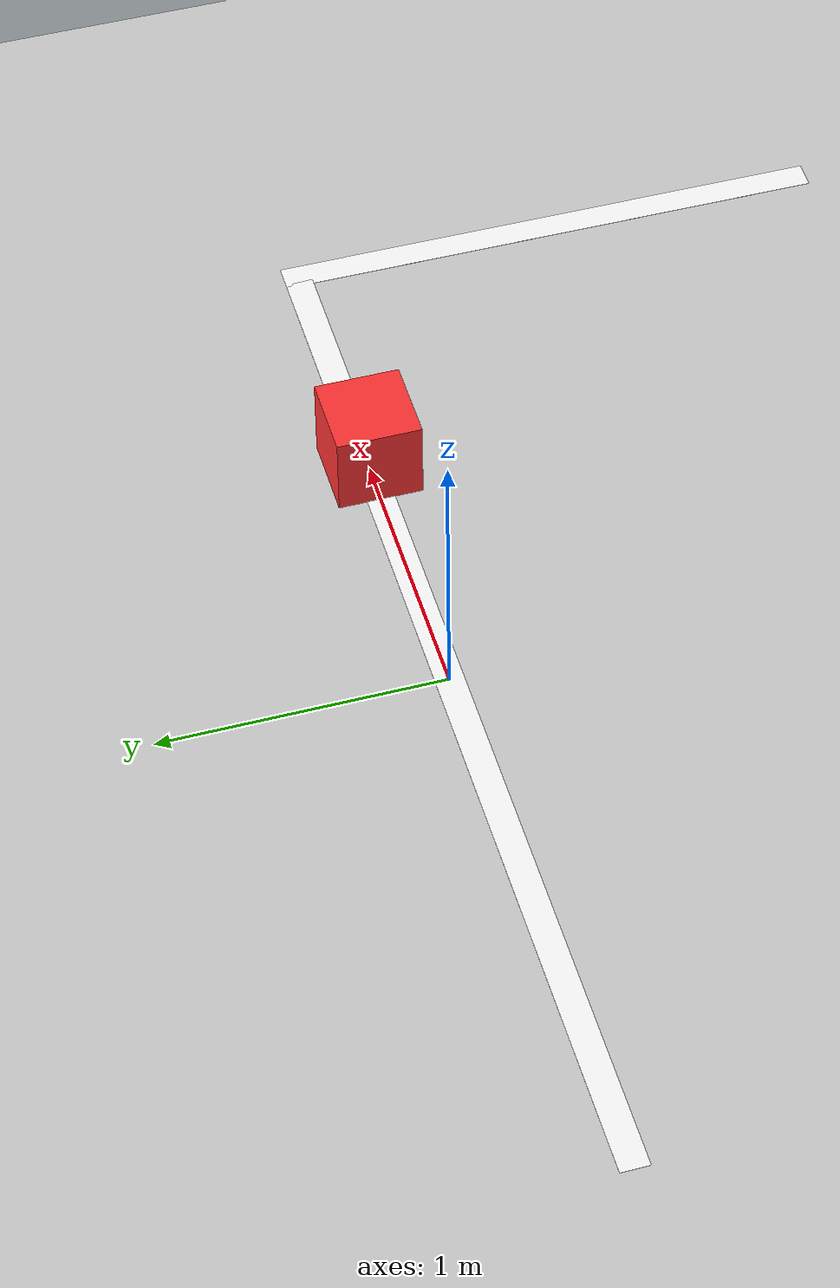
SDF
<?xml version="1.0"?>
<sdf version="1.6">
  <world name="line_world">

    <!-- Physics & lighting -->
    <include><uri>model://sun</uri></include>
    <include><uri>model://ground_plane</uri></include>

    <physics name="default" type="ode">
      <max_step_size>0.001</max_step_size>
      <real_time_factor>1</real_time_factor>
    </physics>

    <!-- ── White line (a flat thin box) ── -->
    <model name="line_straight">
      <static>true</static>
      <pose>0 0 0.001 0 0 0</pose>
      <link name="link">
        <visual name="visual">
          <geometry>
            <box><size>4.0 0.10 0.001</size></box>
          </geometry>
          <material>
            <ambient>1 1 1 1</ambient>
            <diffuse>1 1 1 1</diffuse>
          </material>
        </visual>
        <collision name="col">
          <geometry><box><size>4.0 0.10 0.001</size></box></geometry>
        </collision>
      </link>
    </model>

    <!-- ── Line: right turn section ── -->
    <model name="line_turn">
      <static>true</static>
      <pose>2.0 -0.95 0.001 0 0 -1.5708</pose>
      <link name="link">
        <visual name="visual">
          <geometry><box><size>2.0 0.10 0.001</size></box></geometry>
          <material>
            <ambient>1 1 1 1</ambient>
            <diffuse>1 1 1 1</diffuse>
          </material>
        </visual>
        <collision name="col">
          <geometry><box><size>2.0 0.10 0.001</size></box></geometry>
        </collision>
      </link>
    </model>

    <!-- ── Obstacle box ── -->
    <model name="obstacle_box">
      <static>true</static>
      <pose>1.0 0.0 0.15 0 0 0</pose>
      <link name="link">
        <visual name="visual">
          <geometry><box><size>0.3 0.3 0.3</size></box></geometry>
          <material>
            <ambient>1 0.2 0.2 1</ambient>
            <diffuse>1 0.2 0.2 1</diffuse>
          </material>
        </visual>
        <collision name="col">
          <geometry><box><size>0.3 0.3 0.3</size></box></geometry>
        </collision>
      </link>
    </model>

  </world>
</sdf>
